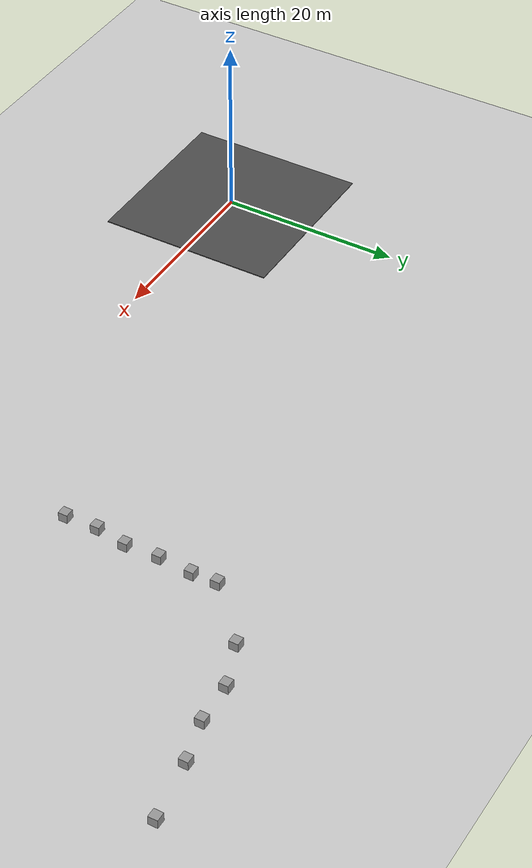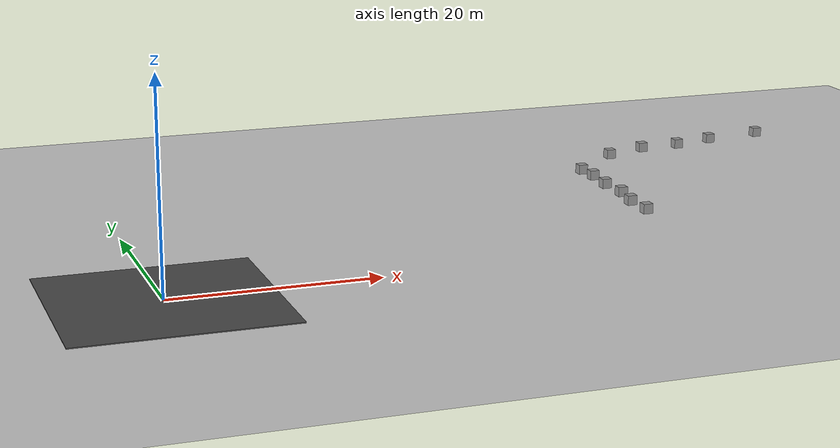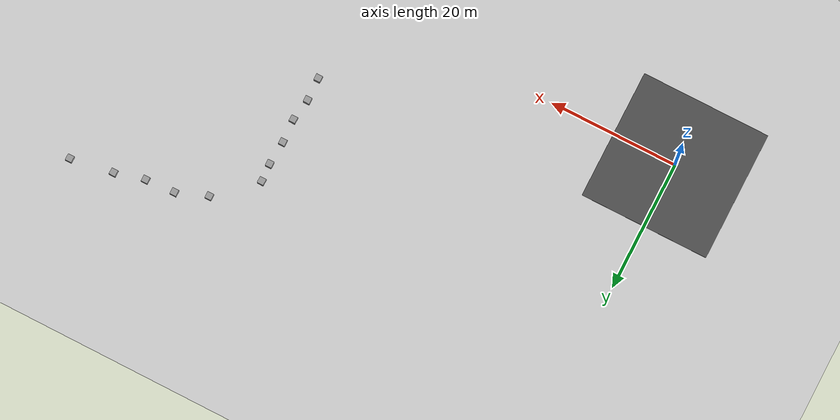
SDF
<sdf version="1.6">
 <world name="oceans_waves">
  <physics name="default_physics" default="1" type="ode">
   <max_step_size>0.004</max_step_size>
   <real_time_factor>1</real_time_factor>
   <real_time_update_rate>250</real_time_update_rate>
  </physics>
  <scene>
   <ambient>0.01 0.01 0.01 1</ambient>
   <sky><clouds><speed>12</speed></clouds></sky>
   <shadows>1</shadows>
   <background>0.7 0.7 0.7 1</background>
  </scene>
  <spherical_coordinates>
   <latitude_deg>56.719</latitude_deg>
   <longitude_deg>3.51562</longitude_deg>
   <surface_model>EARTH_WGS84</surface_model>
   <elevation>0</elevation>
   <heading_deg>0</heading_deg>
  </spherical_coordinates>
  <light name="sun1" type="directional">
   <pose>50 0 150 0 -0 0</pose>
   <diffuse>1 1 1 1</diffuse>
   <specular>0.1 0.1 0.1 1</specular>
   <direction>0.3 0.3 -1</direction>
   <cast_shadows>0</cast_shadows>
  </light>
  <light name="sun_diffuse" type="directional">
   <pose>-50 0 -150 0 -0 0</pose>
   <diffuse>0.6 0.6 0.6 1</diffuse>
   <specular>0 0 0 1</specular>
   <direction>-0.3 -0.3 -1</direction>
   <cast_shadows>0</cast_shadows>
  </light>
  <model name="world_ned">
   <static>1</static>
   <link name="world_ned">
    <gravity>0</gravity>
    <pose>0 0 0 -3.14159 -0 1.5708</pose>
    <visual name="N_visual">
     <pose>0.25 0 0 1.5708 -0 1.5708</pose>
     <geometry><cylinder><radius>0.01</radius><length>0.5</length></cylinder></geometry>
     <material>
      <script><uri>file://media/materials/scripts/gazebo.material</uri><name>Gazebo/Red</name></script>
     </material>
    </visual>
    <visual name="E_visual">
     <pose>0 0.25 0 1.5708 -0 0</pose>
     <geometry><cylinder><radius>0.01</radius><length>0.5</length></cylinder></geometry>
     <material>
      <script><uri>file://media/materials/scripts/gazebo.material</uri><name>Gazebo/Green</name></script>
     </material>
    </visual>
    <visual name="D_visual">
     <pose>0 0 0.25 0 -0 0</pose>
     <geometry><cylinder><radius>0.01</radius><length>0.5</length></cylinder></geometry>
     <material>
      <script><uri>file://media/materials/scripts/gazebo.material</uri><name>Gazebo/Blue</name></script>
     </material>
    </visual>
   </link>
  </model>
  <model name="asphalt_plane">
   <static>1</static>
   <link name="link">
    <collision name="collision"><geometry><box><size>20 20 0.1</size></box></geometry></collision>
    <visual name="visual">
     <cast_shadows>0</cast_shadows>
     <geometry><box><size>20 20 0.1</size></box></geometry>
     <material>
      <script>
       <uri>model://asphalt_plane/materials/scripts</uri>
       <uri>model://asphalt_plane/materials/textures</uri>
       <name>vrc/asphalt</name>
      </script>
     </material>
    </visual>
   </link>
  </model>
  <model name="ground_plane">
   <static>1</static>
   <link name="link">
    <collision name="collision">
     <geometry><plane><normal>0 0 1</normal><size>100 100</size></plane></geometry>
     <surface>
      <contact><collide_bitmask>65535</collide_bitmask></contact>
      <friction><ode><mu>100</mu><mu2>50</mu2></ode></friction>
     </surface>
    </collision>
    <visual name="visual">
     <cast_shadows>0</cast_shadows>
     <geometry><plane><normal>0 0 1</normal><size>100 100</size></plane></geometry>
     <material>
      <script><uri>file://media/materials/scripts/gazebo.material</uri><name>Gazebo/Grey</name></script>
     </material>
    </visual>
   </link>
   <pose>0 0 -0.05 0 -0 0</pose>
  </model>
  <plugin name="underwater_current_plugin" filename="libuuv_underwater_current_ros_plugin.so">
   <namespace>hydrodynamics</namespace>
   <constant_current>
    <topic>current_velocity</topic>
    <velocity><mean>0</mean><min>0</min><max>5</max><mu>0.0</mu><noiseAmp>0.0</noiseAmp></velocity>
    <horizontal_angle>
     <mean>0</mean>
     <min>-3.141592653589793238</min>
     <max>3.141592653589793238</max>
     <mu>0.0</mu>
     <noiseAmp>0.0</noiseAmp>
    </horizontal_angle>
    <vertical_angle>
     <mean>0</mean>
     <min>-3.141592653589793238</min>
     <max>3.141592653589793238</max>
     <mu>0.0</mu>
     <noiseAmp>0.0</noiseAmp>
    </vertical_angle>
   </constant_current>
  </plugin>
  <plugin name="sc_interface" filename="libuuv_sc_ros_interface_plugin.so"/>
  <gravity>0 0 -9.8</gravity>
  <magnetic_field>6e-06 2.3e-05 -4.2e-05</magnetic_field>
  <atmosphere type="adiabatic"/>
  <model name="unit_box">
   <pose>51.9091 29.3814 0.45 0 -0 0</pose>
   <link name="link">
    <inertial>
     <mass>1</mass>
     <inertia>
      <ixx>0.166667</ixx>
      <ixy>0</ixy>
      <ixz>0</ixz>
      <iyy>0.166667</iyy>
      <iyz>0</iyz>
      <izz>0.166667</izz>
     </inertia>
    </inertial>
    <collision name="collision"><geometry><box><size>1 1 1</size></box></geometry></collision>
    <visual name="visual">
     <geometry><box><size>1 1 1</size></box></geometry>
     <material>
      <script><name>Gazebo/Grey</name><uri>file://media/materials/scripts/gazebo.material</uri></script>
     </material>
    </visual>
   </link>
  </model>
  <model name="unit_box_0">
   <pose>52.0533 26.634 0.45 0 -0 0</pose>
   <link name="link">
    <inertial>
     <mass>1</mass>
     <inertia>
      <ixx>0.166667</ixx>
      <ixy>0</ixy>
      <ixz>0</ixz>
      <iyy>0.166667</iyy>
      <iyz>0</iyz>
      <izz>0.166667</izz>
     </inertia>
    </inertial>
    <collision name="collision"><geometry><box><size>1 1 1</size></box></geometry></collision>
    <visual name="visual">
     <geometry><box><size>1 1 1</size></box></geometry>
     <material>
      <script><name>Gazebo/Grey</name><uri>file://media/materials/scripts/gazebo.material</uri></script>
     </material>
    </visual>
   </link>
  </model>
  <model name="unit_box_1">
   <pose>51.8236 22.942 0.45 0 -0 0</pose>
   <link name="link">
    <inertial>
     <mass>1</mass>
     <inertia>
      <ixx>0.166667</ixx>
      <ixy>0</ixy>
      <ixz>0</ixz>
      <iyy>0.166667</iyy>
      <iyz>0</iyz>
      <izz>0.166667</izz>
     </inertia>
    </inertial>
    <collision name="collision"><geometry><box><size>1 1 1</size></box></geometry></collision>
    <visual name="visual">
     <geometry><box><size>1 1 1</size></box></geometry>
     <material>
      <script><name>Gazebo/Grey</name><uri>file://media/materials/scripts/gazebo.material</uri></script>
     </material>
    </visual>
   </link>
  </model>
  <model name="unit_box_2">
   <pose>52.0118 19.3003 0.45 0 -0 0</pose>
   <link name="link">
    <inertial>
     <mass>1</mass>
     <inertia>
      <ixx>0.166667</ixx>
      <ixy>0</ixy>
      <ixz>0</ixz>
      <iyy>0.166667</iyy>
      <iyz>0</iyz>
      <izz>0.166667</izz>
     </inertia>
    </inertial>
    <collision name="collision"><geometry><box><size>1 1 1</size></box></geometry></collision>
    <visual name="visual">
     <geometry><box><size>1 1 1</size></box></geometry>
     <material>
      <script><name>Gazebo/Grey</name><uri>file://media/materials/scripts/gazebo.material</uri></script>
     </material>
    </visual>
   </link>
  </model>
  <model name="unit_box_3">
   <pose>51.4797 15.8462 0.45 0 -0 0</pose>
   <link name="link">
    <inertial>
     <mass>1</mass>
     <inertia>
      <ixx>0.166667</ixx>
      <ixy>0</ixy>
      <ixz>0</ixz>
      <iyy>0.166667</iyy>
      <iyz>0</iyz>
      <izz>0.166667</izz>
     </inertia>
    </inertial>
    <collision name="collision"><geometry><box><size>1 1 1</size></box></geometry></collision>
    <visual name="visual">
     <geometry><box><size>1 1 1</size></box></geometry>
     <material>
      <script><name>Gazebo/Grey</name><uri>file://media/materials/scripts/gazebo.material</uri></script>
     </material>
    </visual>
   </link>
  </model>
  <model name="unit_box_4">
   <pose>51.593 12.3172 0.45 0 -0 0</pose>
   <link name="link">
    <inertial>
     <mass>1</mass>
     <inertia>
      <ixx>0.166667</ixx>
      <ixy>0</ixy>
      <ixz>0</ixz>
      <iyy>0.166667</iyy>
      <iyz>0</iyz>
      <izz>0.166667</izz>
     </inertia>
    </inertial>
    <collision name="collision"><geometry><box><size>1 1 1</size></box></geometry></collision>
    <visual name="visual">
     <geometry><box><size>1 1 1</size></box></geometry>
     <material>
      <script><name>Gazebo/Grey</name><uri>file://media/materials/scripts/gazebo.material</uri></script>
     </material>
    </visual>
   </link>
  </model>
  <model name="unit_box_5">
   <pose>57.6132 34.7736 0.45 0 -0 0</pose>
   <link name="link">
    <inertial>
     <mass>1</mass>
     <inertia>
      <ixx>0.166667</ixx>
      <ixy>0</ixy>
      <ixz>0</ixz>
      <iyy>0.166667</iyy>
      <iyz>0</iyz>
      <izz>0.166667</izz>
     </inertia>
    </inertial>
    <collision name="collision"><geometry><box><size>1 1 1</size></box></geometry></collision>
    <visual name="visual">
     <geometry><box><size>1 1 1</size></box></geometry>
     <material>
      <script><name>Gazebo/Grey</name><uri>file://media/materials/scripts/gazebo.material</uri></script>
     </material>
    </visual>
   </link>
  </model>
  <model name="unit_box_6">
   <pose>62.3521 36.5696 0.45 0 -0 0</pose>
   <link name="link">
    <inertial>
     <mass>1</mass>
     <inertia>
      <ixx>0.166667</ixx>
      <ixy>0</ixy>
      <ixz>0</ixz>
      <iyy>0.166667</iyy>
      <iyz>0</iyz>
      <izz>0.166667</izz>
     </inertia>
    </inertial>
    <collision name="collision"><geometry><box><size>1 1 1</size></box></geometry></collision>
    <visual name="visual">
     <geometry><box><size>1 1 1</size></box></geometry>
     <material>
      <script><name>Gazebo/Grey</name><uri>file://media/materials/scripts/gazebo.material</uri></script>
     </material>
    </visual>
   </link>
  </model>
  <model name="unit_box_7">
   <pose>66.8847 36.8342 0.45 0 -0 0</pose>
   <link name="link">
    <inertial>
     <mass>1</mass>
     <inertia>
      <ixx>0.166667</ixx>
      <ixy>0</ixy>
      <ixz>0</ixz>
      <iyy>0.166667</iyy>
      <iyz>0</iyz>
      <izz>0.166667</izz>
     </inertia>
    </inertial>
    <collision name="collision"><geometry><box><size>1 1 1</size></box></geometry></collision>
    <visual name="visual">
     <geometry><box><size>1 1 1</size></box></geometry>
     <material>
      <script><name>Gazebo/Grey</name><uri>file://media/materials/scripts/gazebo.material</uri></script>
     </material>
    </visual>
   </link>
  </model>
  <model name="unit_box_8">
   <pose>71.4726 38.0252 0.45 0 -0 0</pose>
   <link name="link">
    <inertial>
     <mass>1</mass>
     <inertia>
      <ixx>0.166667</ixx>
      <ixy>0</ixy>
      <ixz>0</ixz>
      <iyy>0.166667</iyy>
      <iyz>0</iyz>
      <izz>0.166667</izz>
     </inertia>
    </inertial>
    <collision name="collision"><geometry><box><size>1 1 1</size></box></geometry></collision>
    <visual name="visual">
     <geometry><box><size>1 1 1</size></box></geometry>
     <material>
      <script><name>Gazebo/Grey</name><uri>file://media/materials/scripts/gazebo.material</uri></script>
     </material>
    </visual>
   </link>
  </model>
  <model name="unit_box_9">
   <pose>78.0327 39.1024 0.45 0 -0 0</pose>
   <link name="link">
    <inertial>
     <mass>1</mass>
     <inertia>
      <ixx>0.166667</ixx>
      <ixy>0</ixy>
      <ixz>0</ixz>
      <iyy>0.166667</iyy>
      <iyz>0</iyz>
      <izz>0.166667</izz>
     </inertia>
    </inertial>
    <collision name="collision"><geometry><box><size>1 1 1</size></box></geometry></collision>
    <visual name="visual">
     <geometry><box><size>1 1 1</size></box></geometry>
     <material>
      <script><name>Gazebo/Grey</name><uri>file://media/materials/scripts/gazebo.material</uri></script>
     </material>
    </visual>
   </link>
  </model>
 </world>
</sdf>
